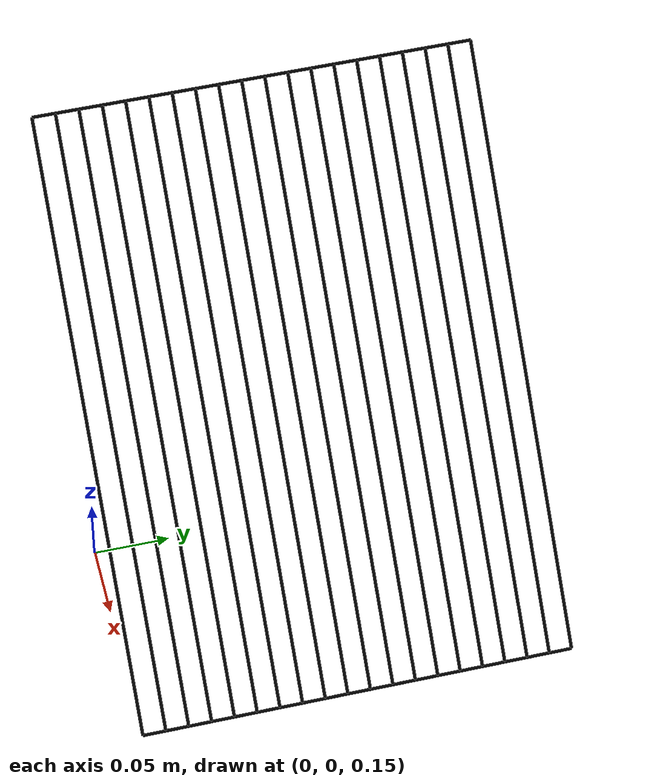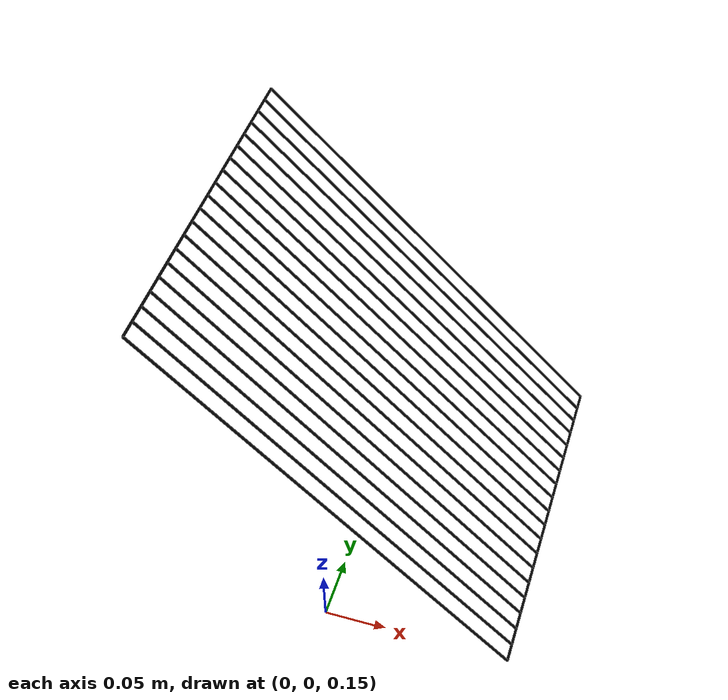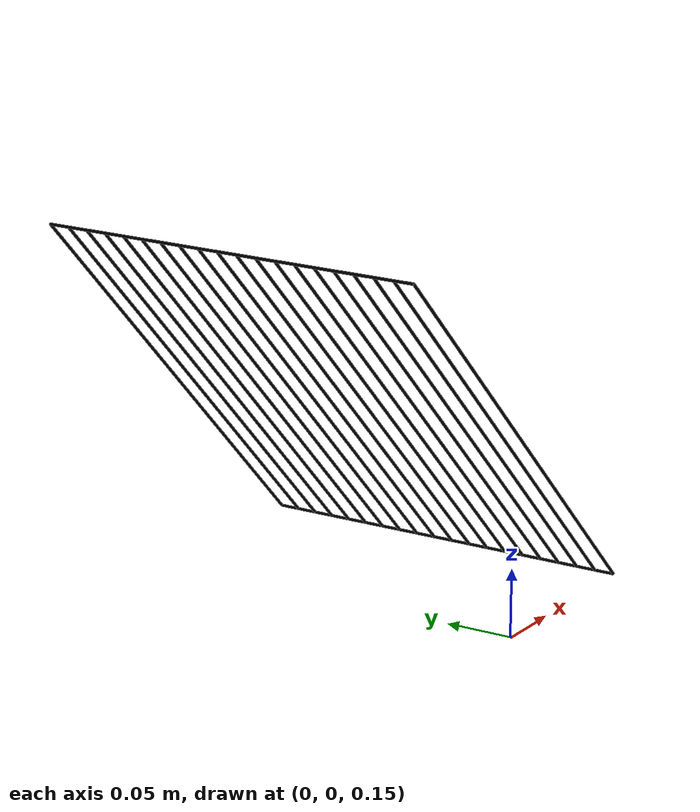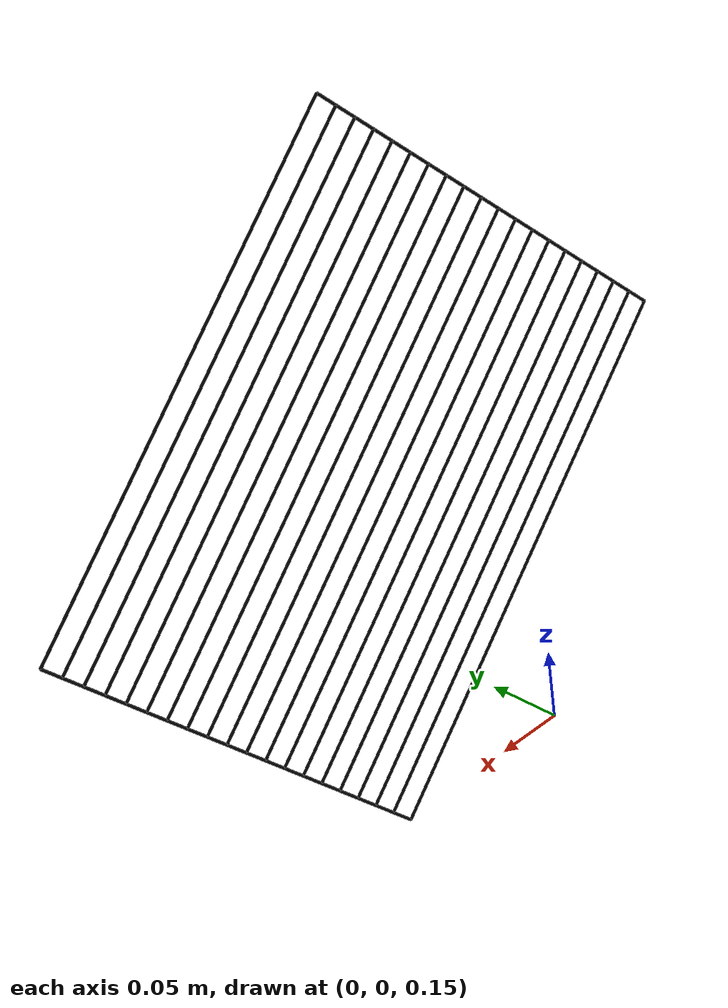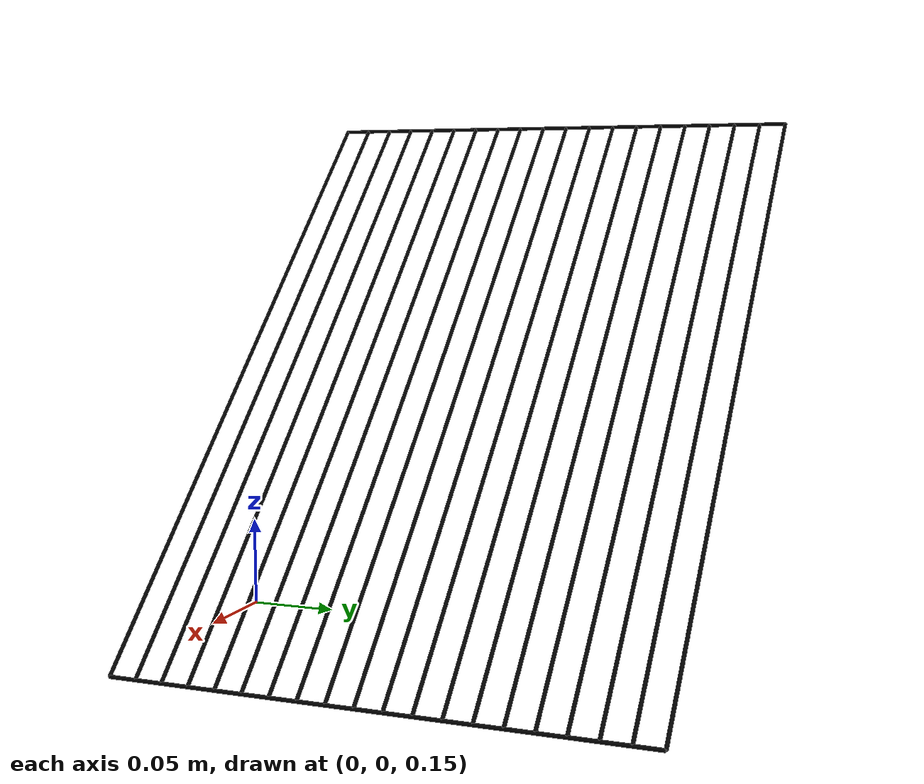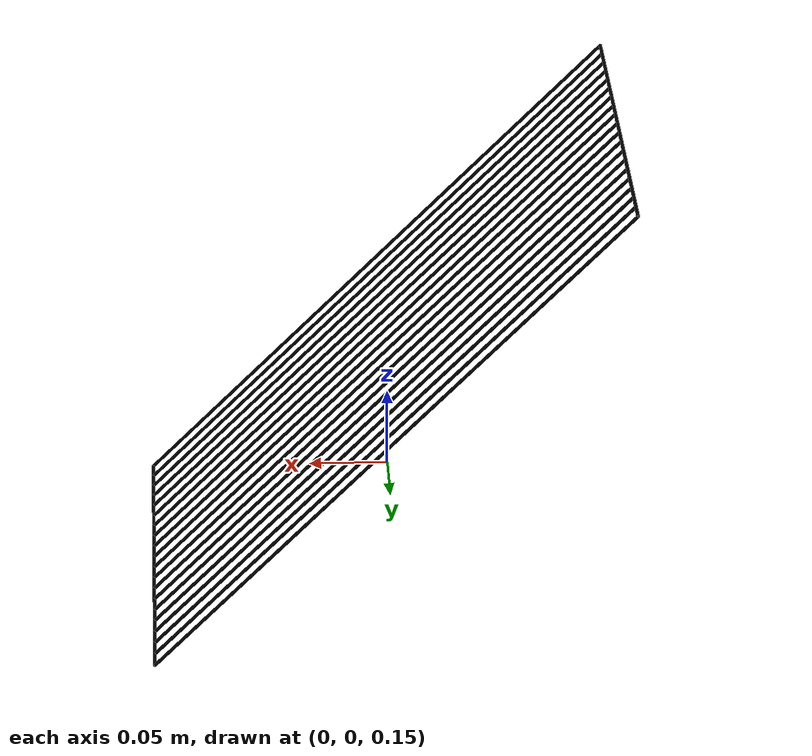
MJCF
<?xml version="1.0"?>
<mujoco model="mesh_crate">
  <!-- A model of a funky dishrack where friction holds the plates in place. -->
  <default>
    <geom type="cylinder" size="0.001 0.2" rgba="0.0 0.0 0.0 1.0" friction="0.5"/>
  </default>

  <worldbody>
    <body name="mesh_grid" euler="0 -45 0" pos="0.15 0.1 0.15">
      <!-- Vertical bars -->
      <geom name="bar_01" pos="0.0 -0.100 0.2"/>
      <geom name="bar_02" pos="0.0 -0.085 0.2"/>
      <geom name="bar_03" pos="0.0 -0.070 0.2"/>
      <geom name="bar_04" pos="0.0 -0.055 0.2"/>
      <geom name="bar_05" pos="0.0 -0.040 0.2"/>
      <geom name="bar_06" pos="0.0 -0.025 0.2"/>
      <geom name="bar_07" pos="0.0 -0.010 0.2"/>
      <geom name="bar_08" pos="0.0  0.005 0.2"/>
      <geom name="bar_09" pos="0.0  0.020 0.2"/>
      <geom name="bar_10" pos="0.0  0.035 0.2"/>
      <geom name="bar_11" pos="0.0  0.050 0.2"/>
      <geom name="bar_12" pos="0.0  0.065 0.2"/>
      <geom name="bar_13" pos="0.0  0.080 0.2"/>
      <geom name="bar_14" pos="0.0  0.095 0.2"/>
      <geom name="bar_15" pos="0.0  0.110 0.2"/>
      <geom name="bar_16" pos="0.0  0.125 0.2"/>
      <geom name="bar_17" pos="0.0  0.140 0.2"/>
      <geom name="bar_18" pos="0.0  0.155 0.2"/>
      <geom name="bar_19" pos="0.0  0.170 0.2"/>
      <geom name="bar_20" pos="0.0  0.185 0.2"/>

      <!-- End pieces -->
      <geom name="end_01" size="0.001 0.1425" pos="0.0 0.0425 0.0" euler="90 0 0" />
      <geom name="end_02" size="0.001 0.1425" pos="0.0 0.0425 0.4" euler="90 0 0" />
    </body>
  </worldbody>
</mujoco>
